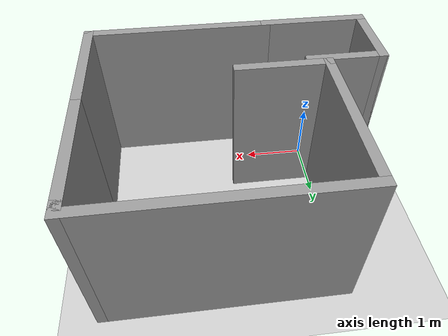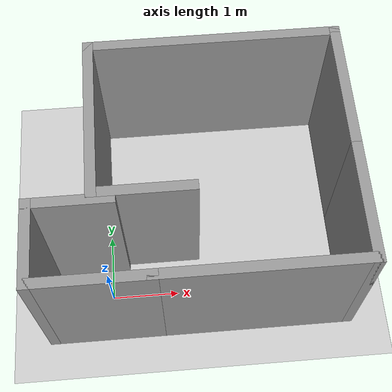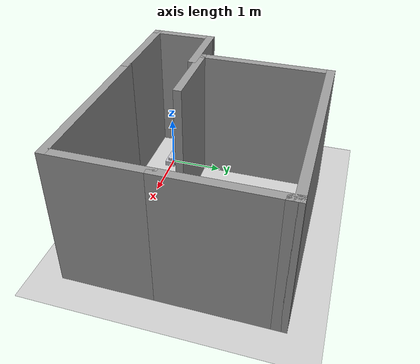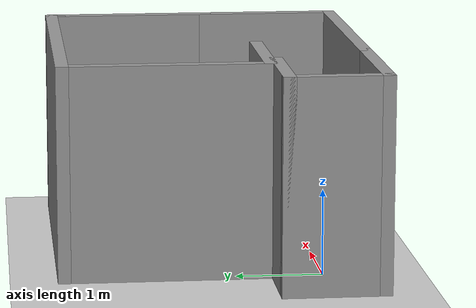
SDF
<sdf version="1.7">
 <world name="default">
  <light name="sun" type="directional">
   <pose>0 0 10 0 -0 0</pose>
   <diffuse>0.8 0.8 0.8 1</diffuse>
   <specular>0.2 0.2 0.2 1</specular>
   <attenuation>
    <range>1000</range>
    <constant>0.9</constant>
    <linear>0.01</linear>
    <quadratic>0.001</quadratic>
   </attenuation>
   <direction>-0.5 0.1 -0.9</direction>
   <spot><inner_angle>0</inner_angle><outer_angle>0</outer_angle><falloff>0</falloff></spot>
  </light>
  <model name="ground_plane">
   <static>1</static>
   <link name="link">
    <collision name="collision">
     <geometry><plane><normal>0 0 1</normal><size>100 100</size></plane></geometry>
     <surface>
      <contact><collide_bitmask>65535</collide_bitmask></contact>
      <friction><ode><mu>100</mu><mu2>50</mu2></ode></friction>
     </surface>
    </collision>
    <visual name="visual">
     <cast_shadows>0</cast_shadows>
     <geometry><plane><normal>0 0 1</normal><size>100 100</size></plane></geometry>
     <material>
      <script><uri>file://media/materials/scripts/gazebo.material</uri><name>Gazebo/Grey</name></script>
     </material>
    </visual>
   </link>
  </model>
  <gravity>0 0 -9.8</gravity>
  <magnetic_field>6e-06 2.3e-05 -4.2e-05</magnetic_field>
  <atmosphere type="adiabatic"/>
  <physics type="ode">
   <max_step_size>0.001</max_step_size>
   <real_time_factor>1</real_time_factor>
   <real_time_update_rate>1000</real_time_update_rate>
  </physics>
  <scene><ambient>0.4 0.4 0.4 1</ambient><background>0.7 0.7 0.7 1</background><shadows>1</shadows></scene>
  <spherical_coordinates>
   <surface_model>EARTH_WGS84</surface_model>
   <latitude_deg>0</latitude_deg>
   <longitude_deg>0</longitude_deg>
   <elevation>0</elevation>
   <heading_deg>0</heading_deg>
  </spherical_coordinates>
  <model name="hexa_pipe_line">
   <link name="base_link">
    <inertial>
     <pose>2.13625 1.25 0.5 0 -0 0</pose>
     <mass>359.355</mass>
     <inertia><ixx>533.113</ixx><ixy>0</ixy><ixz>0</ixz><iyy>328.309</iyy><iyz>0</iyz><izz>765.22</izz></inertia>
    </inertial>
    <collision name="base_link_collision">
     <geometry>
      <mesh>
       <scale>0.001 0.001 0.001</scale>
       <uri>/home/ajetayrus/casestudy_ws/src/hexa_pipe_line_description/meshes/base_link.stl</uri>
      </mesh>
     </geometry>
     <surface><friction><ode><mu>0.2</mu><mu2>0.2</mu2></ode></friction></surface>
    </collision>
    <visual name="base_link_visual">
     <geometry>
      <mesh>
       <scale>0.001 0.001 0.001</scale>
       <uri>/home/ajetayrus/casestudy_ws/src/hexa_pipe_line_description/meshes/base_link.stl</uri>
      </mesh>
     </geometry>
     <material>
      <script><name>Gazebo/Silver</name><uri>file://media/materials/scripts/gazebo.material</uri></script>
     </material>
    </visual>
    <self_collide>1</self_collide>
   </link>
   <static>0</static>
   <plugin name="control" filename="libgazebo_ros_control.so"><robotNamespace>/</robotNamespace></plugin>
  </model>
  <model name="new_pipe">
   <pose>1.325 1.195 0 0 -0 0</pose>
   <link name="Wall_17">
    <collision name="Wall_17_Collision">
     <geometry><box><size>3 0.15 2.5</size></box></geometry>
     <pose>0 0 1.25 0 -0 0</pose>
    </collision>
    <visual name="Wall_17_Visual">
     <pose>0 0 1.25 0 -0 0</pose>
     <geometry><box><size>3 0.15 2.5</size></box></geometry>
     <material>
      <script><uri>file://media/materials/scripts/gazebo.material</uri><name>Gazebo/Grey</name></script>
      <ambient>1 1 1 1</ambient>
     </material>
     <meta><layer>0</layer></meta>
    </visual>
    <pose>0.8 -1.775 0 0 -0 0</pose>
   </link>
   <link name="Wall_18">
    <collision name="Wall_18_Collision">
     <geometry><box><size>1.75 0.15 2.5</size></box></geometry>
     <pose>0 0 1.25 0 -0 0</pose>
    </collision>
    <visual name="Wall_18_Visual">
     <pose>0 0 1.25 0 -0 0</pose>
     <geometry><box><size>1.75 0.15 2.5</size></box></geometry>
     <material>
      <script><uri>file://media/materials/scripts/gazebo.material</uri><name>Gazebo/Grey</name></script>
      <ambient>1 1 1 1</ambient>
     </material>
     <meta><layer>0</layer></meta>
    </visual>
    <pose>2.225 -0.975 0 0 -0 1.5708</pose>
   </link>
   <link name="Wall_21">
    <collision name="Wall_21_Collision">
     <geometry><box><size>2 0.15 2.5</size></box></geometry>
     <pose>0 0 1.25 0 -0 0</pose>
    </collision>
    <visual name="Wall_21_Visual">
     <pose>0 0 1.25 0 -0 0</pose>
     <geometry><box><size>2 0.15 2.5</size></box></geometry>
     <material>
      <script><uri>file://media/materials/scripts/gazebo.material</uri><name>Gazebo/Grey</name></script>
      <ambient>1 1 1 1</ambient>
     </material>
     <meta><layer>0</layer></meta>
    </visual>
    <pose>2.225 0.75 0 0 -0 1.5708</pose>
   </link>
   <link name="Wall_23">
    <collision name="Wall_23_Collision">
     <geometry><box><size>0.25 0.15 2.5</size></box></geometry>
     <pose>0 0 1.25 0 -0 0</pose>
    </collision>
    <visual name="Wall_23_Visual">
     <pose>0 0 1.25 0 -0 0</pose>
     <geometry><box><size>0.25 0.15 2.5</size></box></geometry>
     <material>
      <script><uri>file://media/materials/scripts/gazebo.material</uri><name>Gazebo/Grey</name></script>
      <ambient>1 1 1 1</ambient>
     </material>
     <meta><layer>0</layer></meta>
    </visual>
    <pose>2.225 1.725 0 0 -0 1.5708</pose>
   </link>
   <link name="Wall_24">
    <collision name="Wall_24_Collision">
     <geometry><box><size>3.75 0.15 2.5</size></box></geometry>
     <pose>0 0 1.25 0 -0 0</pose>
    </collision>
    <visual name="Wall_24_Visual">
     <pose>0 0 1.25 0 -0 0</pose>
     <geometry><box><size>3.75 0.15 2.5</size></box></geometry>
     <material>
      <script><uri>file://media/materials/scripts/gazebo.material</uri><name>Gazebo/Grey</name></script>
      <ambient>1 1 1 1</ambient>
     </material>
     <meta><layer>0</layer></meta>
    </visual>
    <pose>0.425 1.775 0 0 -0 3.14159</pose>
   </link>
   <link name="Wall_25">
    <collision name="Wall_25_Collision">
     <geometry><box><size>2.5 0.15 2.5</size></box></geometry>
     <pose>0 0 1.25 0 -0 0</pose>
    </collision>
    <visual name="Wall_25_Visual">
     <pose>0 0 1.25 0 -0 0</pose>
     <geometry><box><size>2.5 0.15 2.5</size></box></geometry>
     <material>
      <script><uri>file://media/materials/scripts/gazebo.material</uri><name>Gazebo/Grey</name></script>
      <ambient>1 1 1 1</ambient>
     </material>
     <meta><layer>0</layer></meta>
    </visual>
    <pose>-1.375 0.6 0 0 -0 -1.5708</pose>
   </link>
   <link name="Wall_26">
    <collision name="Wall_26_Collision">
     <geometry><box><size>1.5 0.15 2.5</size></box></geometry>
     <pose>0 0 1.25 0 -0 0</pose>
    </collision>
    <visual name="Wall_26_Visual">
     <pose>0 0 1.25 0 -0 0</pose>
     <geometry><box><size>1.5 0.15 2.5</size></box></geometry>
     <material>
      <script><uri>file://media/materials/scripts/gazebo.material</uri><name>Gazebo/Grey</name></script>
      <ambient>1 1 1 1</ambient>
     </material>
     <meta><layer>0</layer></meta>
    </visual>
    <pose>-0.7 -0.575 0 0 -0 0</pose>
   </link>
   <link name="Wall_31">
    <collision name="Wall_31_Collision">
     <geometry><box><size>1.75 0.15 2.5</size></box></geometry>
     <pose>0 0 1.25 0 -0 0</pose>
    </collision>
    <visual name="Wall_31_Visual">
     <pose>0 0 1.25 0 -0 0</pose>
     <geometry><box><size>1.75 0.15 2.5</size></box></geometry>
     <material>
      <script><uri>file://media/materials/scripts/gazebo.material</uri><name>Gazebo/Grey</name></script>
      <ambient>1 1 1 1</ambient>
     </material>
     <meta><layer>0</layer></meta>
    </visual>
    <pose>-1.425 -1.775 0 0 -0 3.14159</pose>
   </link>
   <link name="Wall_33">
    <collision name="Wall_33_Collision">
     <geometry><box><size>1.25 0.15 2.5</size></box></geometry>
     <pose>0 0 1.25 0 -0 0</pose>
    </collision>
    <visual name="Wall_33_Visual">
     <pose>0 0 1.25 0 -0 0</pose>
     <geometry><box><size>1.25 0.15 2.5</size></box></geometry>
     <material>
      <script><uri>file://media/materials/scripts/gazebo.material</uri><name>Gazebo/Grey</name></script>
      <ambient>1 1 1 1</ambient>
     </material>
     <meta><layer>0</layer></meta>
    </visual>
    <pose>-2.225 -1.225 0 0 -0 1.5708</pose>
   </link>
   <link name="Wall_34">
    <collision name="Wall_34_Collision">
     <geometry><box><size>1.25 0.15 2.5</size></box></geometry>
     <pose>0 0 1.25 0 -0 0</pose>
    </collision>
    <visual name="Wall_34_Visual">
     <pose>0 0 1.25 0 -0 0</pose>
     <geometry><box><size>1.25 0.15 2.5</size></box></geometry>
     <material>
      <script><uri>file://media/materials/scripts/gazebo.material</uri><name>Gazebo/Grey</name></script>
      <ambient>1 1 1 1</ambient>
     </material>
     <meta><layer>0</layer></meta>
    </visual>
    <pose>-1.675 -0.675 0 0 -0 0</pose>
   </link>
   <static>1</static>
  </model>
 </world>
</sdf>
